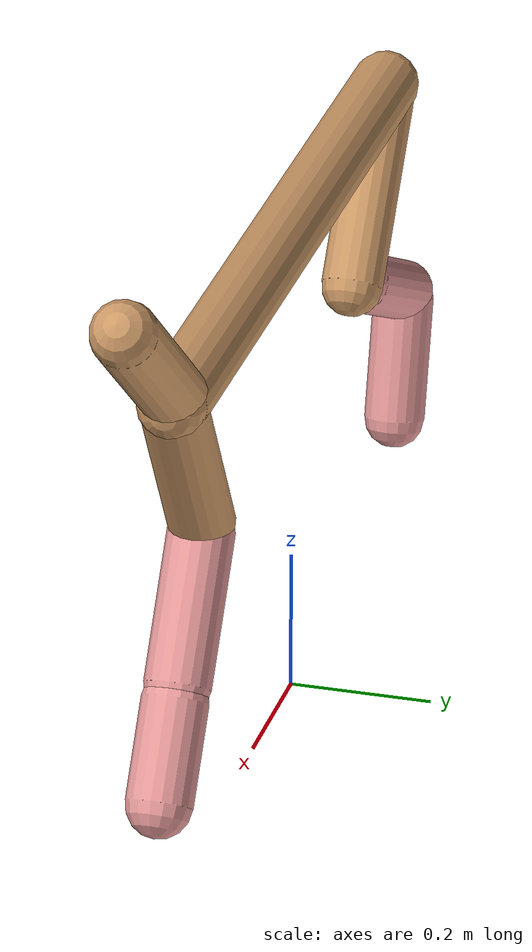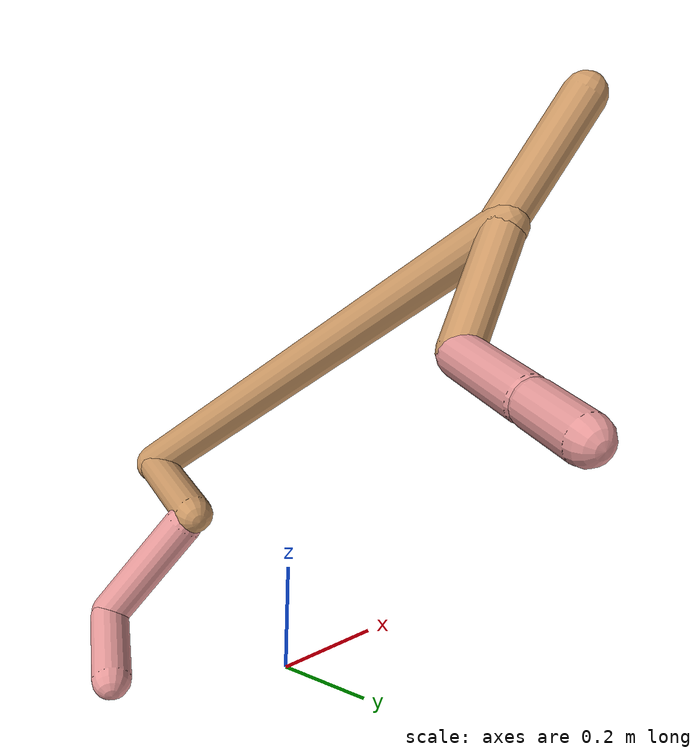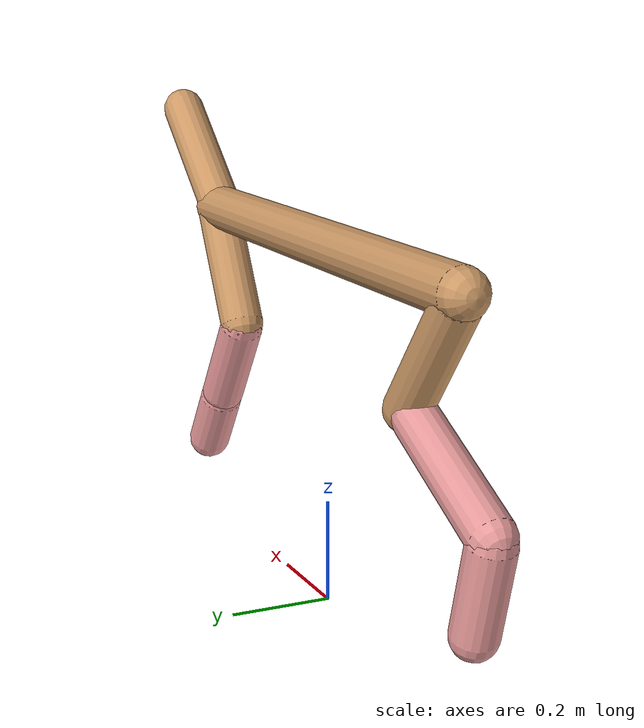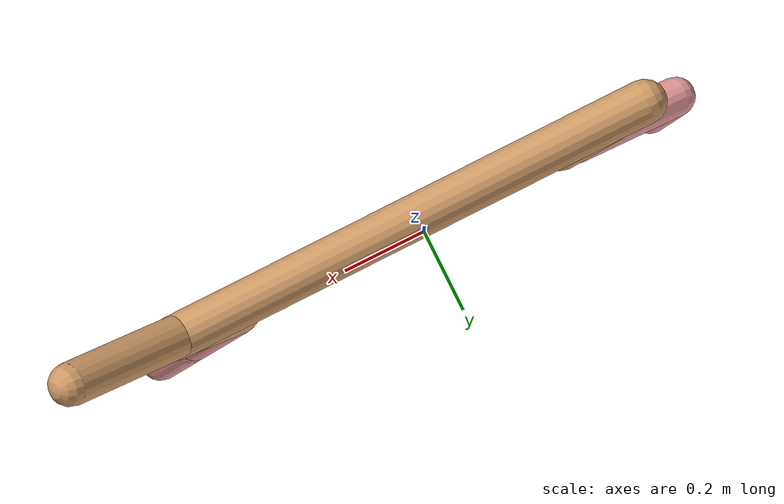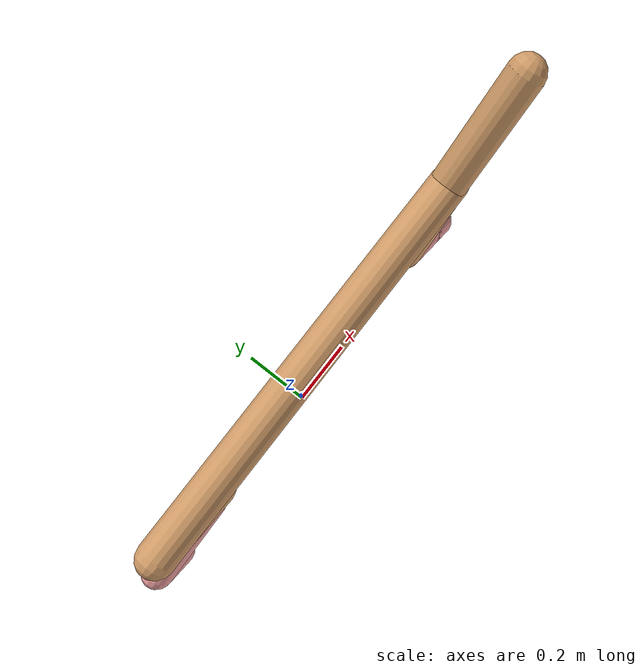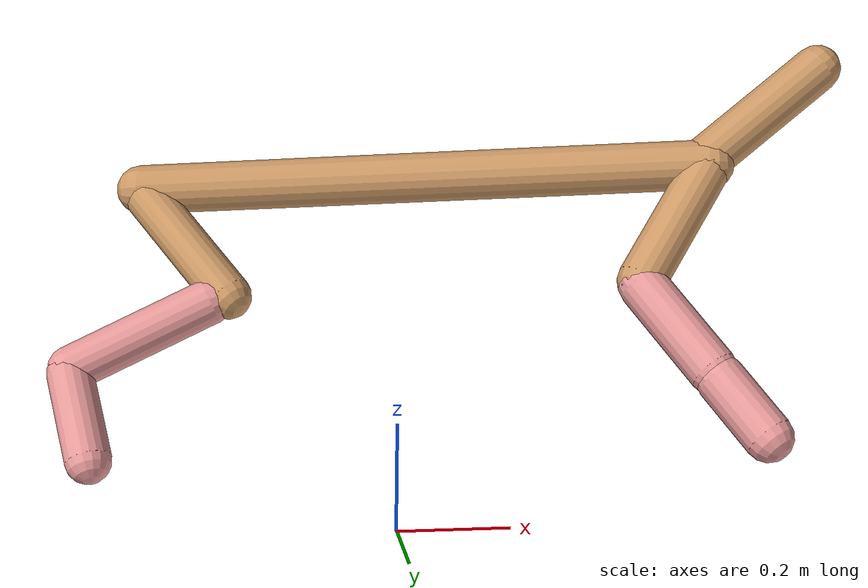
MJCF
<mujoco model="cheetah">
  <compiler angle="radian" coordinate="local" inertiafromgeom="true" settotalmass="14" />
  <default>
    <joint armature=".1" damping=".01" limited="true" solimplimit="0 .8 .03" solreflimit=".02 1" stiffness="8" />
    <geom conaffinity="0" condim="3" contype="1" friction="0.8 .1 .1" rgba="0.8 0.6 .4 1" solimp="0.0 0.8 0.01" solref="0.02 1" />
    <motor ctrllimited="true" ctrlrange="-1 1" />
  </default>
  <size nstack="300000" nuser_geom="1" />
  <option gravity="0 0 -9.81" timestep="0.01" />
  <worldbody>
    <body name="torso" pos="0.0 0.0 0.6996056598898884">
      <joint armature="0" axis="1 0 0" damping="0" limited="false" name="ignorex" pos="0 0 0" stiffness="0" type="slide" />
      <joint armature="0" axis="0 0 1" damping="0" limited="false" name="ignorez" pos="0 0 0" stiffness="0" type="slide" />
      <joint armature="0" axis="0 1 0" damping="0" limited="false" name="ignorey" pos="0 0 0" stiffness="0" type="hinge" />
      <geom fromto="-0.5 0.0 0.0 0.5824917363295127 0.0 0.0" name="torso" size="0.04714127306377591" type="capsule" />
      <geom axisangle="0 1 0 .87" name="head" pos="0.6824917363295125 0.0 0.1" size="0.04506040761423106 0.15" type="capsule" />

      <body name="bthigh" pos="-.5 0 0">
        <joint axis="0 1 0" damping="6" name="bthigh" pos="0 0 0" range="-.52 1.05" stiffness="240" type="hinge" />
        <geom axisangle="0 1 0 -3.8" name="bthigh" pos="0.09551381049520412 0.0 -0.12416795364376534" size="0.04337429173056932 0.13764210213619332" type="capsule" />
        <body name="bshin" pos="0.15102762099040823 0.0 -0.23833590728753068">
          <joint axis="0 1 0" damping="4.5" name="bshin" pos="0 0 0" range="-.785 .785" stiffness="180" type="hinge" />
          <geom axisangle="0 1 0 -2.03" name="bshin" pos="-0.13319196146414944 0.0 -0.06659598073207472" rgba="0.9 0.6 0.6 1" size="0.04337429173056932 0.14238838152019997" type="capsule" />
          <body name="bfoot" pos="-0.2663839229282989 0.0 -0.13319196146414944">
            <joint axis="0 1 0" damping="3" name="bfoot" pos="0 0 0" range="-.4 .785" stiffness="120" type="hinge" />
            <geom axisangle="0 1 0 -.27" name="bfoot" pos="0.028590624909985266 0.0 -0.0924430205422857" rgba="0.9 0.6 0.6 1" size="0.04337429173056932 0.08923005241932533" type="capsule" />
            <inertial mass="10" />
          </body>
        </body>
      </body>
      <body name="fthigh" pos="0.5824917363295126 0.0 0.0">
        <joint axis="0 1 0" damping="4.5" name="fthigh" pos="0 0 0" range="-1.5 0.8" stiffness="180" type="hinge" />
        <geom axisangle="0 1 0 .52" name="fthigh" pos="-0.06997235706913559 0.0 -0.11995261211851813" size="0.04538630157455553 0.13294513887589454" type="capsule" />
        <body name="fshin" pos="-0.13994471413827117 0.0 -0.23990522423703625">
          <joint axis="0 1 0" damping="3" name="fshin" pos="0 0 0" range="-1.2 1.1" stiffness="120" type="hinge" />
          <geom axisangle="0 1 0 -.6" name="fshin" pos="0.06497440006756898 0.0 -0.0899645539397109" rgba="0.9 0.6 0.6 1" size="0.04538630157455553 0.1059562760965776" type="capsule" />
          <body name="ffoot" pos="0.12994880013513796 0.0 -0.1799291078794218">
            <joint axis="0 1 0" damping="1.5" name="ffoot" pos="0 0 0" range="-3.1 -0.3" stiffness="60" type="hinge" />
            <geom axisangle="0 1 0 -.6" name="ffoot" pos="0.044984386016143144 0.0 -0.06997571158066712" rgba="0.9 0.6 0.6 1" size="0.04538630157455553 0.06997112572415502" type="capsule" />
            <inertial mass="10" />
          </body>
        </body>
      </body>
    </body>
  </worldbody>
  <actuator>
    <motor gear="120" joint="bthigh" name="bthigh" />
    <motor gear="90" joint="bshin" name="bshin" />
    <motor gear="60" joint="bfoot" name="bfoot" />
    <motor gear="120" joint="fthigh" name="fthigh" />
    <motor gear="60" joint="fshin" name="fshin" />
    <motor gear="30" joint="ffoot" name="ffoot" />
  </actuator>
</mujoco>
